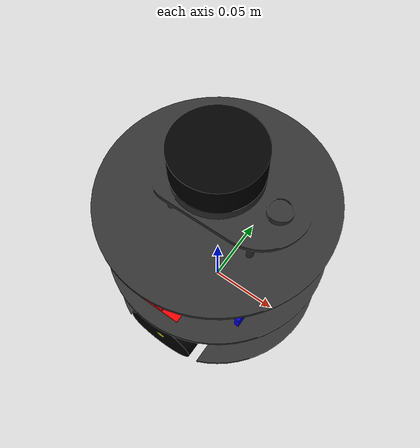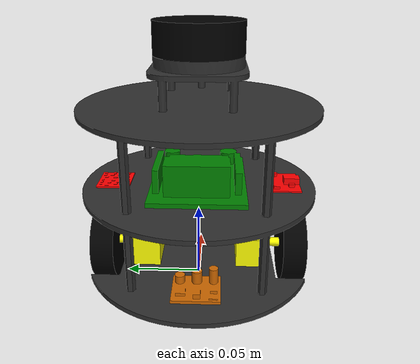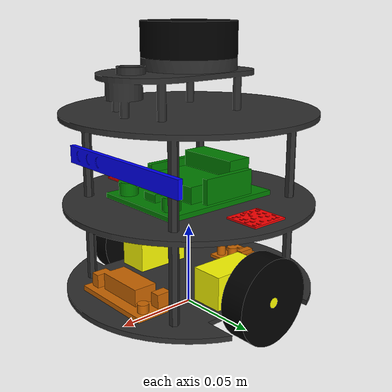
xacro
<?xml version="1.0" ?>
<robot name="heyrobo" xmlns:xacro="http://www.ros.org/wiki/xacro">

<xacro:include filename="$(find heyrobo_description)/urdf/materials.xacro" />
<xacro:include filename="$(find heyrobo_description)/urdf/heyrobo.trans" />

<xacro:include filename="$(find heyrobo_description)/gazebo/heyrobo_material.gazebo" />
<xacro:include filename="$(find heyrobo_description)/gazebo/heyrobo_physics.gazebo" />
<xacro:include filename="$(find heyrobo_description)/gazebo/heyrobo_plugins.gazebo" />

<link name="base_link">
  <inertial>
    <origin rpy="0 0 0" xyz="0.001782877615204312 -2.7386094551475455e-07 0.08422100119570049"/>
    <mass value="0.23325325121754711"/>
    <inertia ixx="0.000787" ixy="0.0" ixz="-2.3e-05" iyy="0.000843" iyz="0.0" izz="0.000564"/>
  </inertial>
  <visual>
    <origin rpy="0 0 0" xyz="0 0 0"/>
    <geometry>
      <mesh filename="package://heyrobo_description/meshes/base_link.stl" scale="0.001 0.001 0.001"/>
    </geometry>
    <material name="FlatBlack"/>
  </visual>
  <collision>
    <origin rpy="0 0 0" xyz="0 0 0"/>
    <geometry>
      <mesh filename="package://heyrobo_description/meshes/base_link.stl" scale="0.001 0.001 0.001"/>
    </geometry>
  </collision>
</link>

<link name="wheel_left_1">
  <inertial>
    <origin rpy="0 0 0" xyz="4.552478321867922e-15 -0.007500423156312684 -2.333382158187236e-07"/>
    <mass value="0.02699841135791531"/>
    <inertia ixx="5e-06" ixy="0.0" ixz="0.0" iyy="9e-06" iyz="0.0" izz="5e-06"/>
  </inertial>
  <visual>
    <origin rpy="0 0 0" xyz="-0.0 -0.069952 -0.024963"/>
    <geometry>
      <mesh filename="package://heyrobo_description/meshes/wheel_left_1.stl" scale="0.001 0.001 0.001"/>
    </geometry>
    <material name="Black"/>
  </visual>
  <collision>
    <origin rpy="0 0 0" xyz="-0.0 -0.069952 -0.024963"/>
    <geometry>
      <mesh filename="package://heyrobo_description/meshes/wheel_left_1.stl" scale="0.001 0.001 0.001"/>
    </geometry>
  </collision>
</link>

<link name="wheel_right_1">
  <inertial>
    <origin rpy="0 0 0" xyz="4.552478321867922e-15 0.007500423156312705 -2.333382158187236e-07"/>
    <mass value="0.02699841135791531"/>
    <inertia ixx="5e-06" ixy="-0.0" ixz="0.0" iyy="9e-06" iyz="0.0" izz="5e-06"/>
  </inertial>
  <visual>
    <origin rpy="0 0 0" xyz="-0.0 0.069952 -0.024963"/>
    <geometry>
      <mesh filename="package://heyrobo_description/meshes/wheel_right_1.stl" scale="0.001 0.001 0.001"/>
    </geometry>
    <material name="Black"/>
  </visual>
  <collision>
    <origin rpy="0 0 0" xyz="-0.0 0.069952 -0.024963"/>
    <geometry>
      <mesh filename="package://heyrobo_description/meshes/wheel_right_1.stl" scale="0.001 0.001 0.001"/>
    </geometry>
  </collision>
</link>

<link name="buck_converter_1">
  <inertial>
    <origin rpy="0 0 0" xyz="0.04514571717117801 2.9566100750217767e-05 0.004879176337773128"/>
    <mass value="0.010757707897424093"/>
    <inertia ixx="2e-06" ixy="0.0" ixz="-0.0" iyy="1e-06" iyz="0.0" izz="3e-06"/>
  </inertial>
  <visual>
    <origin rpy="0 0 0" xyz="0.0 -0.0 -0.016"/>
    <geometry>
      <mesh filename="package://heyrobo_description/meshes/buck_converter_1.stl" scale="0.001 0.001 0.001"/>
    </geometry>
    <material name="Orange"/>
  </visual>
  <collision>
    <origin rpy="0 0 0" xyz="0.0 -0.0 -0.016"/>
    <geometry>
      <mesh filename="package://heyrobo_description/meshes/buck_converter_1.stl" scale="0.001 0.001 0.001"/>
    </geometry>
  </collision>
</link>

<link name="caster_forward_1">
  <inertial>
    <origin rpy="0 0 0" xyz="0.04999999999999999 0.0 -0.005120689655172414"/>
    <mass value="0.003219085272378341"/>
    <inertia ixx="0.0" ixy="-0.0" ixz="0.0" iyy="0.0" iyz="0.0" izz="0.0"/>
  </inertial>
  <visual>
    <origin rpy="0 0 0" xyz="0.0 -0.0 -0.013"/>
    <geometry>
      <mesh filename="package://heyrobo_description/meshes/caster_forward_1.stl" scale="0.001 0.001 0.001"/>
    </geometry>
    <material name="White"/>
  </visual>
  <collision>
    <origin rpy="0 0 0" xyz="0.0 -0.0 -0.013"/>
    <geometry>
      <mesh filename="package://heyrobo_description/meshes/caster_forward_1.stl" scale="0.001 0.001 0.001"/>
    </geometry>
  </collision>
</link>

<link name="motor_left_1">
  <inertial>
    <origin rpy="0 0 0" xyz="3.006445340381141e-14 0.03607865595745413 0.009950167512628356"/>
    <mass value="0.11488744292785769"/>
    <inertia ixx="1e-05" ixy="-0.0" ixz="0.0" iyy="1.5e-05" iyz="0.0" izz="1.8e-05"/>
  </inertial>
  <visual>
    <origin rpy="0 0 0" xyz="0.0 -0.0 -0.016"/>
    <geometry>
      <mesh filename="package://heyrobo_description/meshes/motor_left_1.stl" scale="0.001 0.001 0.001"/>
    </geometry>
    <material name="Yellow"/>
  </visual>
  <collision>
    <origin rpy="0 0 0" xyz="0.0 -0.0 -0.016"/>
    <geometry>
      <mesh filename="package://heyrobo_description/meshes/motor_left_1.stl" scale="0.001 0.001 0.001"/>
    </geometry>
  </collision>
</link>

<link name="motor_right_1">
  <inertial>
    <origin rpy="0 0 0" xyz="3.006445340381141e-14 -0.03607865595745413 0.009950167512628356"/>
    <mass value="0.03951542622996379"/>
    <inertia ixx="4e-06" ixy="0.0" ixz="0.0" iyy="5e-06" iyz="-0.0" izz="6e-06"/>
  </inertial>
  <visual>
    <origin rpy="0 0 0" xyz="0.0 -0.0 -0.016"/>
    <geometry>
      <mesh filename="package://heyrobo_description/meshes/motor_right_1.stl" scale="0.001 0.001 0.001"/>
    </geometry>
    <material name="Yellow"/>
  </visual>
  <collision>
    <origin rpy="0 0 0" xyz="0.0 -0.0 -0.016"/>
    <geometry>
      <mesh filename="package://heyrobo_description/meshes/motor_right_1.stl" scale="0.001 0.001 0.001"/>
    </geometry>
  </collision>
</link>

<link name="motordriver_1">
  <inertial>
    <origin rpy="0 0 0" xyz="-0.043723582455067224 -0.0005137429549447101 0.0025957215422437695"/>
    <mass value="0.0026004233023750865"/>
    <inertia ixx="0.0" ixy="0.0" ixz="-0.0" iyy="0.0" iyz="0.0" izz="0.0"/>
  </inertial>
  <visual>
    <origin rpy="0 0 0" xyz="0.0 -0.0 -0.016"/>
    <geometry>
      <mesh filename="package://heyrobo_description/meshes/motordriver_1.stl" scale="0.001 0.001 0.001"/>
    </geometry>
    <material name="Orange"/>
  </visual>
  <collision>
    <origin rpy="0 0 0" xyz="0.0 -0.0 -0.016"/>
    <geometry>
      <mesh filename="package://heyrobo_description/meshes/motordriver_1.stl" scale="0.001 0.001 0.001"/>
    </geometry>
  </collision>
</link>

<link name="caster_backward_1">
  <inertial>
    <origin rpy="0 0 0" xyz="-0.05 0.0 -0.005120689655172414"/>
    <mass value="0.003219085272378341"/>
    <inertia ixx="0.0" ixy="0.0" ixz="0.0" iyy="0.0" iyz="0.0" izz="0.0"/>
  </inertial>
  <visual>
    <origin rpy="0 0 0" xyz="0.0 -0.0 -0.013"/>
    <geometry>
      <mesh filename="package://heyrobo_description/meshes/caster_backward_1.stl" scale="0.001 0.001 0.001"/>
    </geometry>
    <material name="White"/>
  </visual>
  <collision>
    <origin rpy="0 0 0" xyz="0.0 -0.0 -0.013"/>
    <geometry>
      <mesh filename="package://heyrobo_description/meshes/caster_backward_1.stl" scale="0.001 0.001 0.001"/>
    </geometry>
  </collision>
</link>

<link name="jetson_nano_1">
  <inertial>
    <origin rpy="0 0 0" xyz="-0.005295113116831629 0.00021573889388830494 0.007516134720018386"/>
    <mass value="0.04771635108753617"/>
    <inertia ixx="1.3e-05" ixy="0.0" ixz="2e-06" iyy="1.8e-05" iyz="-0.0" izz="2.8e-05"/>
  </inertial>
  <visual>
    <origin rpy="0 0 0" xyz="-0.0 -0.0 -0.069"/>
    <geometry>
      <mesh filename="package://heyrobo_description/meshes/jetson_nano_1.stl" scale="0.001 0.001 0.001"/>
    </geometry>
    <material name="Green"/>
  </visual>
  <collision>
    <origin rpy="0 0 0" xyz="-0.0 -0.0 -0.069"/>
    <geometry>
      <mesh filename="package://heyrobo_description/meshes/jetson_nano_1.stl" scale="0.001 0.001 0.001"/>
    </geometry>
  </collision>
</link>

<link name="charger_module_1">
  <inertial>
    <origin rpy="0 0 0" xyz="-0.00017446359080985102 -0.05601040734689702 0.0012142978669051896"/>
    <mass value="0.0009213756135170499"/>
    <inertia ixx="0.0" ixy="-0.0" ixz="0.0" iyy="0.0" iyz="0.0" izz="0.0"/>
  </inertial>
  <visual>
    <origin rpy="0 0 0" xyz="-0.0 -0.0 -0.069"/>
    <geometry>
      <mesh filename="package://heyrobo_description/meshes/charger_module_1.stl" scale="0.001 0.001 0.001"/>
    </geometry>
    <material name="Red"/>
  </visual>
  <collision>
    <origin rpy="0 0 0" xyz="-0.0 -0.0 -0.069"/>
    <geometry>
      <mesh filename="package://heyrobo_description/meshes/charger_module_1.stl" scale="0.001 0.001 0.001"/>
    </geometry>
  </collision>
</link>

<link name="mpu_1">
  <inertial>
    <origin rpy="0 0 0" xyz="3.3726447384165855e-05 0.05498913414138193 0.0005460155677621537"/>
    <mass value="0.0005611587155407809"/>
    <inertia ixx="0.0" ixy="-0.0" ixz="-0.0" iyy="0.0" iyz="0.0" izz="0.0"/>
  </inertial>
  <visual>
    <origin rpy="0 0 0" xyz="-0.0 -0.0 -0.069"/>
    <geometry>
      <mesh filename="package://heyrobo_description/meshes/mpu_1.stl" scale="0.001 0.001 0.001"/>
    </geometry>
    <material name="Red"/>
  </visual>
  <collision>
    <origin rpy="0 0 0" xyz="-0.0 -0.0 -0.069"/>
    <geometry>
      <mesh filename="package://heyrobo_description/meshes/mpu_1.stl" scale="0.001 0.001 0.001"/>
    </geometry>
  </collision>
</link>

<link name="depth_camera_1">
  <inertial>
    <origin rpy="0 0 0" xyz="0.0013832262885812088 -0.039535058234552355 -3.3248877983893532e-06"/>
    <mass value="0.003323250846170174"/>
    <inertia ixx="3e-06" ixy="-0.0" ixz="0.0" iyy="0.0" iyz="-0.0" izz="3e-06"/>
  </inertial>
  <visual>
    <origin rpy="0 0 0" xyz="-0.047529 -0.040026 -0.094"/>
    <geometry>
      <mesh filename="package://heyrobo_description/meshes/depth_camera_1.stl" scale="0.001 0.001 0.001"/>
    </geometry>
    <material name="Blue"/>
  </visual>
  <collision>
    <origin rpy="0 0 0" xyz="-0.047529 -0.040026 -0.094"/>
    <geometry>
      <mesh filename="package://heyrobo_description/meshes/depth_camera_1.stl" scale="0.001 0.001 0.001"/>
    </geometry>
  </collision>
</link>

<link name="lidar_1">
  <inertial>
    <origin rpy="0 0 0" xyz="0.0 0.0 0.010000000000000037"/>
    <mass value="0.3782644380312132"/>
    <inertia ixx="8.5e-05" ixy="-0.0" ixz="0.0" iyy="8.5e-05" iyz="0.0" izz="0.000145"/>
  </inertial>
  <visual>
    <origin rpy="0 0 0" xyz="-0.0 -0.0 -0.152"/>
    <geometry>
      <mesh filename="package://heyrobo_description/meshes/lidar_1.stl" scale="0.001 0.001 0.001"/>
    </geometry>
    <material name="Black"/>
  </visual>
  <collision>
    <origin rpy="0 0 0" xyz="-0.0 -0.0 -0.152"/>
    <geometry>
      <mesh filename="package://heyrobo_description/meshes/lidar_1.stl" scale="0.001 0.001 0.001"/>
    </geometry>
  </collision>
</link>

<joint name="motor_left" type="continuous">
  <origin rpy="0 0 0" xyz="0.0 0.069952 0.008963"/>
  <parent link="motor_left_1"/>
  <child link="wheel_left_1"/>
  <axis xyz="0.0 1.0 0.0"/>
</joint>

<joint name="motor_right" type="continuous">
  <origin rpy="0 0 0" xyz="0.0 -0.069952 0.008963"/>
  <parent link="motor_right_1"/>
  <child link="wheel_right_1"/>
  <axis xyz="0.0 1.0 0.0"/>
</joint>

<joint name="Rigid30" type="fixed">
  <origin rpy="0 0 0" xyz="0.0 0.0 0.016"/>
  <parent link="base_link"/>
  <child link="buck_converter_1"/>
</joint>

<joint name="Rigid31" type="fixed">
  <origin rpy="0 0 0" xyz="0.0 0.0 0.013"/>
  <parent link="base_link"/>
  <child link="caster_forward_1"/>
</joint>

<joint name="Rigid32" type="fixed">
  <origin rpy="0 0 0" xyz="0.0 0.0 0.016"/>
  <parent link="base_link"/>
  <child link="motor_left_1"/>
</joint>

<joint name="Rigid33" type="fixed">
  <origin rpy="0 0 0" xyz="0.0 0.0 0.016"/>
  <parent link="base_link"/>
  <child link="motor_right_1"/>
</joint>

<joint name="Rigid34" type="fixed">
  <origin rpy="0 0 0" xyz="0.0 0.0 0.016"/>
  <parent link="base_link"/>
  <child link="motordriver_1"/>
</joint>

<joint name="Rigid35" type="fixed">
  <origin rpy="0 0 0" xyz="0.0 0.0 0.013"/>
  <parent link="base_link"/>
  <child link="caster_backward_1"/>
</joint>

<joint name="Rigid36" type="fixed">
  <origin rpy="0 0 0" xyz="0.0 0.0 0.069"/>
  <parent link="base_link"/>
  <child link="jetson_nano_1"/>
</joint>

<joint name="Rigid37" type="fixed">
  <origin rpy="0 0 0" xyz="0.0 0.0 0.069"/>
  <parent link="base_link"/>
  <child link="charger_module_1"/>
</joint>

<joint name="Rigid38" type="fixed">
  <origin rpy="0 0 0" xyz="0.0 0.0 0.069"/>
  <parent link="base_link"/>
  <child link="mpu_1"/>
</joint>

<joint name="Rigid39" type="fixed">
  <origin rpy="0 0 0" xyz="0.047529 0.040026 0.094"/>
  <parent link="base_link"/>
  <child link="depth_camera_1"/>
</joint>

<joint name="Rigid40" type="fixed">
  <origin rpy="0 0 0" xyz="0.0 0.0 0.152"/>
  <parent link="base_link"/>
  <child link="lidar_1"/>
</joint>

</robot>

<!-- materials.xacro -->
<robot name="heyrobo" xmlns:xacro="http://www.ros.org/wiki/xacro" >

<material name="FlatBlack">
  <color rgba="0.184 0.184 0.184 1.000"/>
</material>

<material name="Black">
  <color rgba="0 0 0 1.000"/>
</material>

<material name="Orange">
  <color rgba="0.8 0.4 0.0 1.000"/>
</material>

<material name="White">
  <color rgba="1 1 1 1.000"/>
</material>

<material name="Yellow">
  <color rgba="1 1 0 1.000"/>
</material>

<material name="Green">
  <color rgba="0 0.5 0 1.000"/>
</material>

<material name="Red">
  <color rgba="1 0 0 1.000"/>
</material>

<material name="Blue">
  <color rgba="0 0 1 1.000"/>
</material>

</robot>

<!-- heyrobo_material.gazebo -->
<robot name="heyrobo" xmlns:xacro="http://www.ros.org/wiki/xacro" >

<xacro:property name="base_color" value="Gazebo/FlatBlack" />
<xacro:property name="wheel_color" value="Gazebo/Black" />
<xacro:property name="component1_color" value="Gazebo/Orange" />
<xacro:property name="caster_color" value="Gazebo/White" />
<xacro:property name="motor_color" value="Gazebo/Yellow" />
<xacro:property name="jetson_color" value="Gazebo/Green" />
<xacro:property name="component2_color" value="Gazebo/Red" />
<xacro:property name="camera_color" value="Gazebo/Blue" />
<xacro:property name="lidar_color" value="Gazebo/Black" />

<gazebo reference="base_link">
  <material>${base_color}</material>
</gazebo>

<gazebo reference="wheel_left_1">
  <material>${wheel_color}</material>
</gazebo>

<gazebo reference="wheel_right_1">
  <material>${wheel_color}</material>
</gazebo>

<gazebo reference="buck_converter_1">
  <material>${component1_color}</material>
</gazebo>

<gazebo reference="caster_forward_1">
  <material>${caster_color}</material>
</gazebo>

<gazebo reference="motor_left_1">
  <material>${motor_color}</material>
</gazebo>

<gazebo reference="motor_right_1">
  <material>${motor_color}</material>
</gazebo>

<gazebo reference="motordriver_1">
  <material>${component1_color}</material>
</gazebo>

<gazebo reference="caster_backward_1">
  <material>${caster_color}</material>
</gazebo>

<gazebo reference="jetson_nano_1">
  <material>${jetson_color}</material>
</gazebo>

<gazebo reference="charger_module_1">
  <material>${component2_color}</material>
</gazebo>

<gazebo reference="mpu_1">
  <material>${component2_color}</material>
</gazebo>

<gazebo reference="depth_camera_1">
  <material>${camera_color}</material>
</gazebo>

<gazebo reference="lidar_1">
  <material>${lidar_color}</material>
</gazebo>

</robot>
